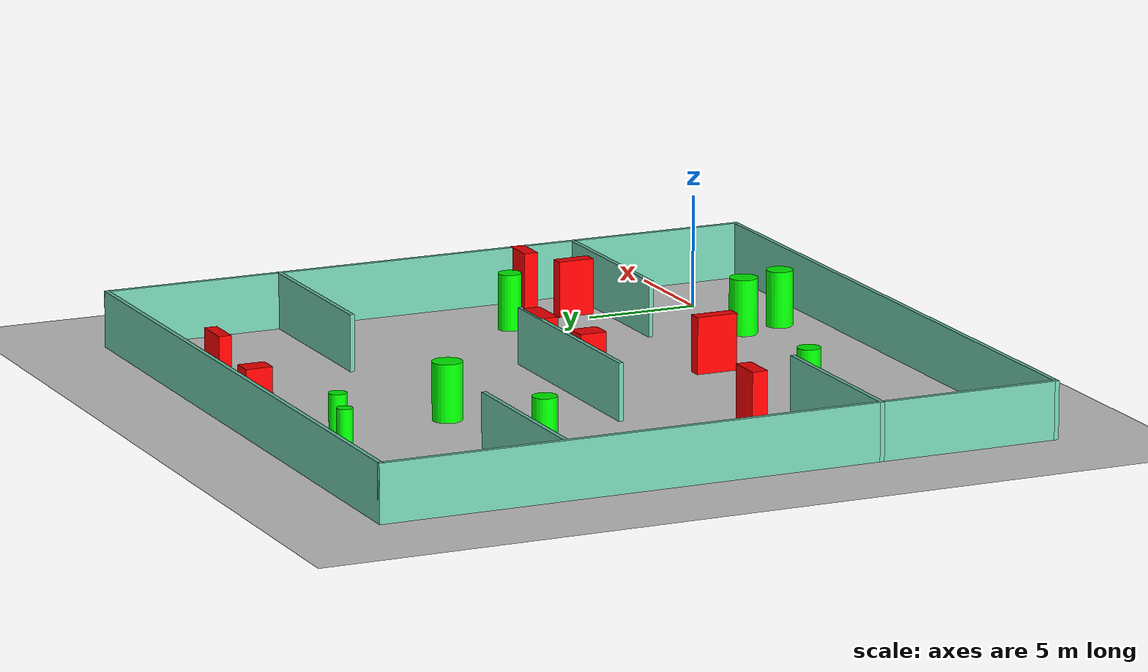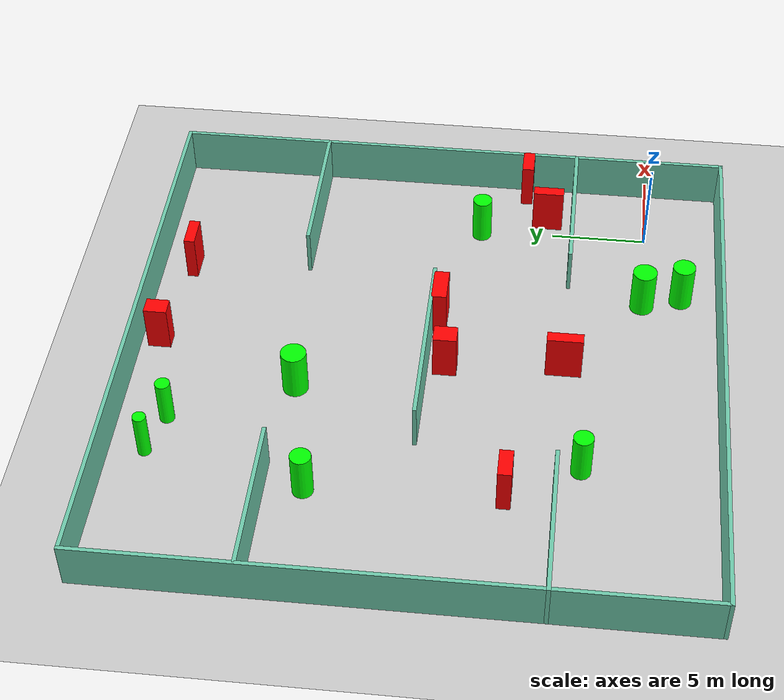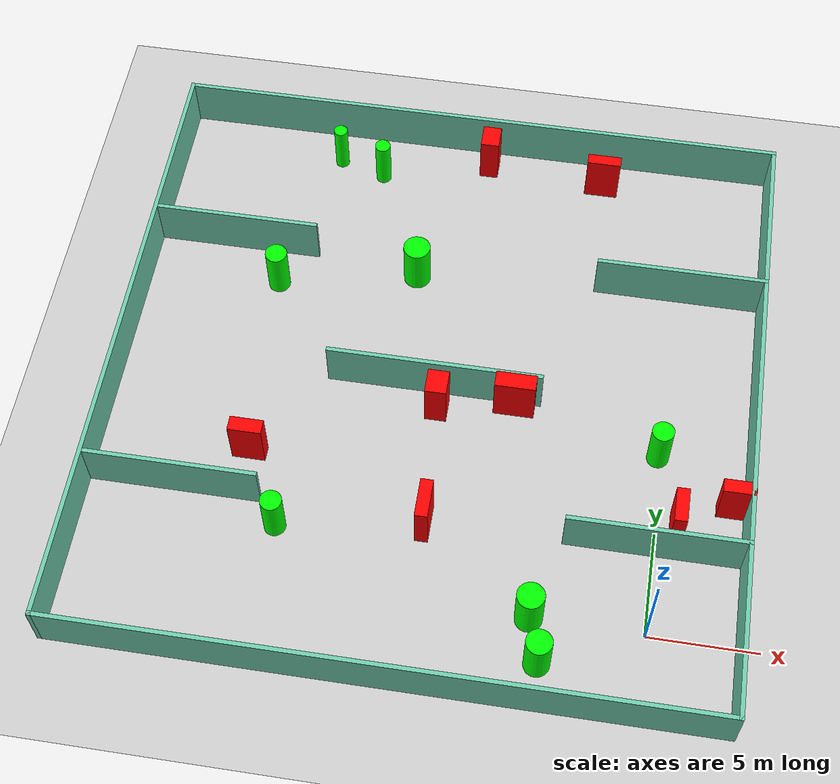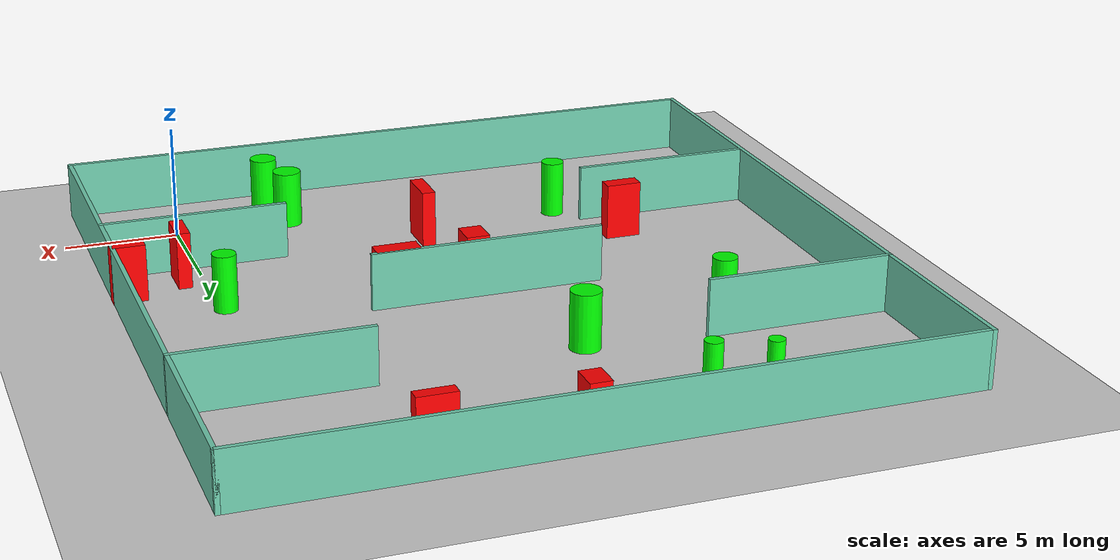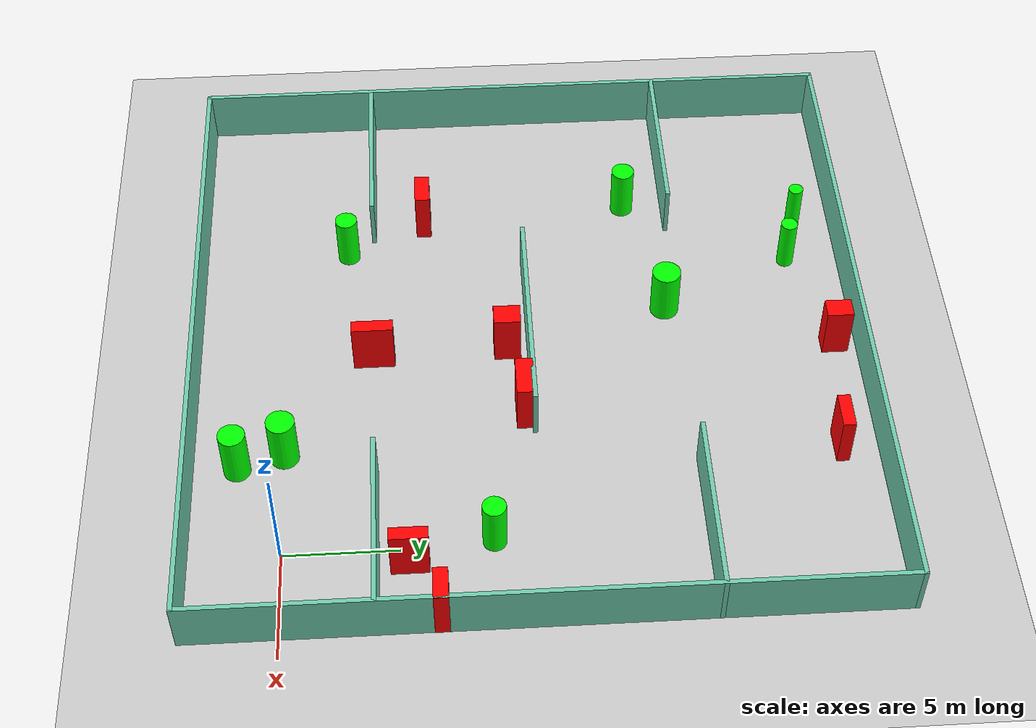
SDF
<sdf version="1.7">
 <world name="default">
  <light name="sun" type="directional">
   <pose>0 0 10 0 -0 0</pose>
   <diffuse>0.8 0.8 0.8 1</diffuse>
   <specular>0.2 0.2 0.2 1</specular>
   <attenuation>
    <range>1000</range>
    <constant>0.9</constant>
    <linear>0.01</linear>
    <quadratic>0.001</quadratic>
   </attenuation>
   <direction>-0.5 0.1 -0.9</direction>
   <spot><inner_angle>0</inner_angle><outer_angle>0</outer_angle><falloff>0</falloff></spot>
  </light>
  <model name="ground_plane">
   <static>1</static>
   <link name="link">
    <collision name="collision">
     <geometry><plane><normal>0 0 1</normal><size>100 100</size></plane></geometry>
     <surface>
      <contact><collide_bitmask>65535</collide_bitmask></contact>
      <friction><ode><mu>100</mu><mu2>50</mu2></ode></friction>
     </surface>
    </collision>
    <visual name="visual">
     <cast_shadows>0</cast_shadows>
     <geometry><plane><normal>0 0 1</normal><size>100 100</size></plane></geometry>
     <material>
      <script><uri>file://media/materials/scripts/gazebo.material</uri><name>Gazebo/Grey</name></script>
     </material>
    </visual>
   </link>
  </model>
  <gravity>0 0 -9.8</gravity>
  <magnetic_field>6e-06 2.3e-05 -4.2e-05</magnetic_field>
  <atmosphere type="adiabatic"/>
  <physics type="ode">
   <max_step_size>0.001</max_step_size>
   <real_time_factor>1</real_time_factor>
   <real_time_update_rate>1000</real_time_update_rate>
  </physics>
  <scene><ambient>0.4 0.4 0.4 1</ambient><background>0.7 0.7 0.7 1</background><shadows>1</shadows></scene>
  <spherical_coordinates>
   <surface_model>EARTH_WGS84</surface_model>
   <latitude_deg>0</latitude_deg>
   <longitude_deg>0</longitude_deg>
   <elevation>0</elevation>
   <heading_deg>0</heading_deg>
  </spherical_coordinates>
  <model name="my_base_walls">
   <link name="Wall_10">
    <collision name="Wall_10_Collision">
     <geometry><box><size>8.2 0.2 2.5</size></box></geometry>
     <pose>0 0 1.25 0 -0 0</pose>
    </collision>
    <visual name="Wall_10_Visual">
     <pose>0 0 1.25 0 -0 0</pose>
     <geometry><box><size>8.2 0.2 2.5</size></box></geometry>
     <material>
      <script><uri>file://media/materials/scripts/gazebo.material</uri><name>Gazebo/Grey</name></script>
      <ambient>0.435294 0.796078 0.67451 1</ambient>
     </material>
     <meta><layer>0</layer></meta>
    </visual>
    <pose>-11 -7 0 0 -0 0</pose>
   </link>
   <link name="Wall_12">
    <collision name="Wall_12_Collision">
     <geometry><box><size>8.2 0.2 2.5</size></box></geometry>
     <pose>0 0 1.25 0 -0 0</pose>
    </collision>
    <visual name="Wall_12_Visual">
     <pose>0 0 1.25 0 -0 0</pose>
     <geometry><box><size>8.2 0.2 2.5</size></box></geometry>
     <material>
      <script><uri>file://media/materials/scripts/gazebo.material</uri><name>Gazebo/Grey</name></script>
      <ambient>0.435294 0.796078 0.67451 1</ambient>
     </material>
     <meta><layer>0</layer></meta>
    </visual>
    <pose>-11 7 0 0 -0 0</pose>
   </link>
   <link name="Wall_14">
    <collision name="Wall_14_Collision">
     <geometry><box><size>8.2 0.2 2.5</size></box></geometry>
     <pose>0 0 1.25 0 -0 0</pose>
    </collision>
    <visual name="Wall_14_Visual">
     <pose>0 0 1.25 0 -0 0</pose>
     <geometry><box><size>8.2 0.2 2.5</size></box></geometry>
     <material>
      <script><uri>file://media/materials/scripts/gazebo.material</uri><name>Gazebo/Grey</name></script>
      <ambient>0.435294 0.796078 0.67451 1</ambient>
     </material>
     <meta><layer>0</layer></meta>
    </visual>
    <pose>11 7 0 0 -0 3.14159</pose>
   </link>
   <link name="Wall_16">
    <collision name="Wall_16_Collision">
     <geometry><box><size>10.2 0.2 2.5</size></box></geometry>
     <pose>0 0 1.25 0 -0 0</pose>
    </collision>
    <visual name="Wall_16_Visual">
     <pose>0 0 1.25 0 -0 0</pose>
     <geometry><box><size>10.2 0.2 2.5</size></box></geometry>
     <material>
      <script><uri>file://media/materials/scripts/gazebo.material</uri><name>Gazebo/Grey</name></script>
      <ambient>0.435294 0.796078 0.67451 1</ambient>
     </material>
     <meta><layer>0</layer></meta>
    </visual>
    <pose>0 0 0 0 -0 3.14159</pose>
   </link>
   <link name="Wall_2">
    <collision name="Wall_2_Collision">
     <geometry><box><size>30.2 0.2 2.5</size></box></geometry>
     <pose>0 0 1.25 0 -0 0</pose>
    </collision>
    <visual name="Wall_2_Visual">
     <pose>0 0 1.25 0 -0 0</pose>
     <geometry><box><size>30.2 0.2 2.5</size></box></geometry>
     <material>
      <script><uri>file://media/materials/scripts/gazebo.material</uri><name>Gazebo/Grey</name></script>
      <ambient>0.435294 0.796078 0.67451 1</ambient>
     </material>
     <meta><layer>0</layer></meta>
    </visual>
    <pose>0 -15 0 0 -0 3.14159</pose>
   </link>
   <link name="Wall_3">
    <collision name="Wall_3_Collision">
     <geometry><box><size>30.2 0.2 2.5</size></box></geometry>
     <pose>0 0 1.25 0 -0 0</pose>
    </collision>
    <visual name="Wall_3_Visual">
     <pose>0 0 1.25 0 -0 0</pose>
     <geometry><box><size>30.2 0.2 2.5</size></box></geometry>
     <material>
      <script><uri>file://media/materials/scripts/gazebo.material</uri><name>Gazebo/Grey</name></script>
      <ambient>0.435294 0.796078 0.67451 1</ambient>
     </material>
     <meta><layer>0</layer></meta>
    </visual>
    <pose>-15 0 0 0 -0 1.5708</pose>
   </link>
   <link name="Wall_4">
    <collision name="Wall_4_Collision">
     <geometry><box><size>30.2 0.2 2.5</size></box></geometry>
     <pose>0 0 1.25 0 -0 0</pose>
    </collision>
    <visual name="Wall_4_Visual">
     <pose>0 0 1.25 0 -0 0</pose>
     <geometry><box><size>30.2 0.2 2.5</size></box></geometry>
     <material>
      <script><uri>file://media/materials/scripts/gazebo.material</uri><name>Gazebo/Grey</name></script>
      <ambient>0.435294 0.796078 0.67451 1</ambient>
     </material>
     <meta><layer>0</layer></meta>
    </visual>
    <pose>0 15 0 0 -0 0</pose>
   </link>
   <link name="Wall_6">
    <collision name="Wall_6_Collision">
     <geometry><box><size>30.2 0.2 2.5</size></box></geometry>
     <pose>0 0 1.25 0 -0 0</pose>
    </collision>
    <visual name="Wall_6_Visual">
     <pose>0 0 1.25 0 -0 0</pose>
     <geometry><box><size>30.2 0.2 2.5</size></box></geometry>
     <material>
      <script><uri>file://media/materials/scripts/gazebo.material</uri><name>Gazebo/Grey</name></script>
      <ambient>0.435294 0.796078 0.67451 1</ambient>
     </material>
     <meta><layer>0</layer></meta>
    </visual>
    <pose>15 0 0 0 -0 1.5708</pose>
   </link>
   <link name="Wall_8">
    <collision name="Wall_8_Collision">
     <geometry><box><size>8.2 0.2 2.5</size></box></geometry>
     <pose>0 0 1.25 0 -0 0</pose>
    </collision>
    <visual name="Wall_8_Visual">
     <pose>0 0 1.25 0 -0 0</pose>
     <geometry><box><size>8.2 0.2 2.5</size></box></geometry>
     <material>
      <script><uri>file://media/materials/scripts/gazebo.material</uri><name>Gazebo/Grey</name></script>
      <ambient>0.435294 0.796078 0.67451 1</ambient>
     </material>
     <meta><layer>0</layer></meta>
    </visual>
    <pose>11 -7 0 0 -0 3.14159</pose>
   </link>
   <static>1</static>
   <pose>-11 11 0 0 -0 0</pose>
  </model>
  <model name="cylinder1">
   <static>1</static>
   <link name="link">
    <inertial>
     <mass>1</mass>
     <inertia><ixx>0.5</ixx><ixy>0</ixy><ixz>0</ixz><iyy>0.5</iyy><iyz>0</iyz><izz>1</izz></inertia>
    </inertial>
    <collision name="collision">
     <geometry><cylinder><radius>0.3363366994854252</radius><length>2.5</length></cylinder></geometry>
    </collision>
    <visual name="visual">
     <geometry><cylinder><radius>0.3363366994854252</radius><length>2.5</length></cylinder></geometry>
     <material>
      <ambient>0 1 0 1</ambient>
      <diffuse>0 1 0 1</diffuse>
      <specular>0.1 0.1 0.1 1</specular>
      <emissive>0 0 0 0</emissive>
     </material>
    </visual>
   </link>
   <pose>-17.85652575533108 24.10764473980653 1.25 0 0 0</pose>
  </model>
  <model name="cylinder2">
   <static>1</static>
   <link name="link">
    <inertial>
     <mass>1</mass>
     <inertia><ixx>0.5</ixx><ixy>0</ixy><ixz>0</ixz><iyy>0.5</iyy><iyz>0</iyz><izz>1</izz></inertia>
    </inertial>
    <collision name="collision">
     <geometry><cylinder><radius>0.6269574994652876</radius><length>2.5</length></cylinder></geometry>
    </collision>
    <visual name="visual">
     <geometry><cylinder><radius>0.6269574994652876</radius><length>2.5</length></cylinder></geometry>
     <material>
      <ambient>0 1 0 1</ambient>
      <diffuse>0 1 0 1</diffuse>
      <specular>0.1 0.1 0.1 1</specular>
      <emissive>0 0 0 0</emissive>
     </material>
    </visual>
   </link>
   <pose>-5.138537167641198 0.05303315606818826 1.25 0 0 0</pose>
  </model>
  <model name="cylinder3">
   <static>1</static>
   <link name="link">
    <inertial>
     <mass>1</mass>
     <inertia><ixx>0.5</ixx><ixy>0</ixy><ixz>0</ixz><iyy>0.5</iyy><iyz>0</iyz><izz>1</izz></inertia>
    </inertial>
    <collision name="collision">
     <geometry><cylinder><radius>0.5020650706072494</radius><length>2.5</length></cylinder></geometry>
    </collision>
    <visual name="visual">
     <geometry><cylinder><radius>0.5020650706072494</radius><length>2.5</length></cylinder></geometry>
     <material>
      <ambient>0 1 0 1</ambient>
      <diffuse>0 1 0 1</diffuse>
      <specular>0.1 0.1 0.1 1</specular>
      <emissive>0 0 0 0</emissive>
     </material>
    </visual>
   </link>
   <pose>-17.011723000417962 2.8026841922108234 1.25 0 0 0</pose>
  </model>
  <model name="cylinder4">
   <static>1</static>
   <link name="link">
    <inertial>
     <mass>1</mass>
     <inertia><ixx>0.5</ixx><ixy>0</ixy><ixz>0</ixz><iyy>0.5</iyy><iyz>0</iyz><izz>1</izz></inertia>
    </inertial>
    <collision name="collision">
     <geometry><cylinder><radius>0.6523163558487611</radius><length>2.5</length></cylinder></geometry>
    </collision>
    <visual name="visual">
     <geometry><cylinder><radius>0.6523163558487611</radius><length>2.5</length></cylinder></geometry>
     <material>
      <ambient>0 1 0 1</ambient>
      <diffuse>0 1 0 1</diffuse>
      <specular>0.1 0.1 0.1 1</specular>
      <emissive>0 0 0 0</emissive>
     </material>
    </visual>
   </link>
   <pose>-12.845867111541263 17.41122809105308 1.25 0 0 0</pose>
  </model>
  <model name="cylinder5">
   <static>1</static>
   <link name="link">
    <inertial>
     <mass>1</mass>
     <inertia><ixx>0.5</ixx><ixy>0</ixy><ixz>0</ixz><iyy>0.5</iyy><iyz>0</iyz><izz>1</izz></inertia>
    </inertial>
    <collision name="collision">
     <geometry><cylinder><radius>0.38114913634290687</radius><length>2.5</length></cylinder></geometry>
    </collision>
    <visual name="visual">
     <geometry><cylinder><radius>0.38114913634290687</radius><length>2.5</length></cylinder></geometry>
     <material>
      <ambient>0 1 0 1</ambient>
      <diffuse>0 1 0 1</diffuse>
      <specular>0.1 0.1 0.1 1</specular>
      <emissive>0 0 0 0</emissive>
     </material>
    </visual>
   </link>
   <pose>-15.572819361686362 23.45749693092033 1.25 0 0 0</pose>
  </model>
  <model name="cylinder6">
   <static>1</static>
   <link name="link">
    <inertial>
     <mass>1</mass>
     <inertia><ixx>0.5</ixx><ixy>0</ixy><ixz>0</ixz><iyy>0.5</iyy><iyz>0</iyz><izz>1</izz></inertia>
    </inertial>
    <collision name="collision">
     <geometry><cylinder><radius>0.5124720970394383</radius><length>2.5</length></cylinder></geometry>
    </collision>
    <visual name="visual">
     <geometry><cylinder><radius>0.5124720970394383</radius><length>2.5</length></cylinder></geometry>
     <material>
      <ambient>0 1 0 1</ambient>
      <diffuse>0 1 0 1</diffuse>
      <specular>0.1 0.1 0.1 1</specular>
      <emissive>0 0 0 0</emissive>
     </material>
    </visual>
   </link>
   <pose>-0.2104889221838384 8.951861938248273 1.25 0 0 0</pose>
  </model>
  <model name="cylinder7">
   <static>1</static>
   <link name="link">
    <inertial>
     <mass>1</mass>
     <inertia><ixx>0.5</ixx><ixy>0</ixy><ixz>0</ixz><iyy>0.5</iyy><iyz>0</iyz><izz>1</izz></inertia>
    </inertial>
    <collision name="collision">
     <geometry><cylinder><radius>0.5910968963164418</radius><length>2.5</length></cylinder></geometry>
    </collision>
    <visual name="visual">
     <geometry><cylinder><radius>0.5910968963164418</radius><length>2.5</length></cylinder></geometry>
     <material>
      <ambient>0 1 0 1</ambient>
      <diffuse>0 1 0 1</diffuse>
      <specular>0.1 0.1 0.1 1</specular>
      <emissive>0 0 0 0</emissive>
     </material>
    </visual>
   </link>
   <pose>-4.539236146861727 -1.9864452446526868 1.25 0 0 0</pose>
  </model>
  <model name="cylinder8">
   <static>1</static>
   <link name="link">
    <inertial>
     <mass>1</mass>
     <inertia><ixx>0.5</ixx><ixy>0</ixy><ixz>0</ixz><iyy>0.5</iyy><iyz>0</iyz><izz>1</izz></inertia>
    </inertial>
    <collision name="collision">
     <geometry><cylinder><radius>0.5284128878188638</radius><length>2.5</length></cylinder></geometry>
    </collision>
    <visual name="visual">
     <geometry><cylinder><radius>0.5284128878188638</radius><length>2.5</length></cylinder></geometry>
     <material>
      <ambient>0 1 0 1</ambient>
      <diffuse>0 1 0 1</diffuse>
      <specular>0.1 0.1 0.1 1</specular>
      <emissive>0 0 0 0</emissive>
     </material>
    </visual>
   </link>
   <pose>-19.5321470420419 16.0145827263061 1.25 0 0 0</pose>
  </model>
  <model name="box1">
   <static>1</static>
   <link name="link">
    <inertial>
     <mass>1</mass>
     <inertia><ixx>0.083</ixx><ixy>0</ixy><ixz>0</ixz><iyy>0.083</iyy><iyz>0</iyz><izz>0.083</izz></inertia>
    </inertial>
    <collision name="collision">
     <geometry><box><size>1.6525855942027345 0.5621093141673161 2.5</size></box></geometry>
    </collision>
    <visual name="visual">
     <geometry><box><size>1.6525855942027345 0.5621093141673161 2.5</size></box></geometry>
     <material>
      <ambient>1 0 0 1</ambient>
      <diffuse>1 0 0 1</diffuse>
      <specular>0.1 0.1 0.1 1</specular>
      <emissive>0 0 0 0</emissive>
     </material>
    </visual>
    <sensor name="my_contact" type="contact">
     <contact><collision>box_collision</collision><topic>__default_topic__</topic></contact>
    </sensor>
   </link>
   <pose>-4.381617479679258 24.23322872847167 1.25 0 0 0</pose>
  </model>
  <model name="box2">
   <static>1</static>
   <link name="link">
    <inertial>
     <mass>1</mass>
     <inertia><ixx>0.083</ixx><ixy>0</ixy><ixz>0</ixz><iyy>0.083</iyy><iyz>0</iyz><izz>0.083</izz></inertia>
    </inertial>
    <collision name="collision">
     <geometry><box><size>0.591219975284736 1.633940791337665 2.5</size></box></geometry>
    </collision>
    <visual name="visual">
     <geometry><box><size>0.591219975284736 1.633940791337665 2.5</size></box></geometry>
     <material>
      <ambient>1 0 0 1</ambient>
      <diffuse>1 0 0 1</diffuse>
      <specular>0.1 0.1 0.1 1</specular>
      <emissive>0 0 0 0</emissive>
     </material>
    </visual>
    <sensor name="my_contact" type="contact">
     <contact><collision>box_collision</collision><topic>__default_topic__</topic></contact>
    </sensor>
   </link>
   <pose>0.9044953166279228 5.391853032883297 1.25 0 0 0</pose>
  </model>
  <model name="box3">
   <static>1</static>
   <link name="link">
    <inertial>
     <mass>1</mass>
     <inertia><ixx>0.083</ixx><ixy>0</ixy><ixz>0</ixz><iyy>0.083</iyy><iyz>0</iyz><izz>0.083</izz></inertia>
    </inertial>
    <collision name="collision">
     <geometry><box><size>1.0068866354865567 1.2078917692649545 2.5</size></box></geometry>
    </collision>
    <visual name="visual">
     <geometry><box><size>1.0068866354865567 1.2078917692649545 2.5</size></box></geometry>
     <material>
      <ambient>1 0 0 1</ambient>
      <diffuse>1 0 0 1</diffuse>
      <specular>0.1 0.1 0.1 1</specular>
      <emissive>0 0 0 0</emissive>
     </material>
    </visual>
    <sensor name="my_contact" type="contact">
     <contact><collision>box_collision</collision><topic>__default_topic__</topic></contact>
    </sensor>
   </link>
   <pose>-10.715339577571793 10.006132042193894 1.25 0 0 0</pose>
  </model>
  <model name="box4">
   <static>1</static>
   <link name="link">
    <inertial>
     <mass>1</mass>
     <inertia><ixx>0.083</ixx><ixy>0</ixy><ixz>0</ixz><iyy>0.083</iyy><iyz>0</iyz><izz>0.083</izz></inertia>
    </inertial>
    <collision name="collision">
     <geometry><box><size>1.5584634939447182 0.6935197763805421 2.5</size></box></geometry>
    </collision>
    <visual name="visual">
     <geometry><box><size>1.5584634939447182 0.6935197763805421 2.5</size></box></geometry>
     <material>
      <ambient>1 0 0 1</ambient>
      <diffuse>1 0 0 1</diffuse>
      <specular>0.1 0.1 0.1 1</specular>
      <emissive>0 0 0 0</emissive>
     </material>
    </visual>
    <sensor name="my_contact" type="contact">
     <contact><collision>box_collision</collision><topic>__default_topic__</topic></contact>
    </sensor>
   </link>
   <pose>-18.933624227751405 6.386137939925286 1.25 0 0 0</pose>
  </model>
  <model name="box5">
   <static>1</static>
   <link name="link">
    <inertial>
     <mass>1</mass>
     <inertia><ixx>0.083</ixx><ixy>0</ixy><ixz>0</ixz><iyy>0.083</iyy><iyz>0</iyz><izz>0.083</izz></inertia>
    </inertial>
    <collision name="collision">
     <geometry><box><size>0.9134787309728991 1.183768381306685 2.5</size></box></geometry>
    </collision>
    <visual name="visual">
     <geometry><box><size>0.9134787309728991 1.183768381306685 2.5</size></box></geometry>
     <material>
      <ambient>1 0 0 1</ambient>
      <diffuse>1 0 0 1</diffuse>
      <specular>0.1 0.1 0.1 1</specular>
      <emissive>0 0 0 0</emissive>
     </material>
    </visual>
    <sensor name="my_contact" type="contact">
     <contact><collision>box_collision</collision><topic>__default_topic__</topic></contact>
    </sensor>
   </link>
   <pose>-10.224076366556751 24.90381311678903 1.25 0 0 0</pose>
  </model>
  <model name="box6">
   <static>1</static>
   <link name="link">
    <inertial>
     <mass>1</mass>
     <inertia><ixx>0.083</ixx><ixy>0</ixy><ixz>0</ixz><iyy>0.083</iyy><iyz>0</iyz><izz>0.083</izz></inertia>
    </inertial>
    <collision name="collision">
     <geometry><box><size>1.4741940793341164 0.6327989251874405 2.5</size></box></geometry>
    </collision>
    <visual name="visual">
     <geometry><box><size>1.4741940793341164 0.6327989251874405 2.5</size></box></geometry>
     <material>
      <ambient>1 0 0 1</ambient>
      <diffuse>1 0 0 1</diffuse>
      <specular>0.1 0.1 0.1 1</specular>
      <emissive>0 0 0 0</emissive>
     </material>
    </visual>
    <sensor name="my_contact" type="contact">
     <contact><collision>box_collision</collision><topic>__default_topic__</topic></contact>
    </sensor>
   </link>
   <pose>3.3755620781625204 6.645943294662933 1.25 0 0 0</pose>
  </model>
  <model name="box7">
   <static>1</static>
   <link name="link">
    <inertial>
     <mass>1</mass>
     <inertia><ixx>0.083</ixx><ixy>0</ixy><ixz>0</ixz><iyy>0.083</iyy><iyz>0</iyz><izz>0.083</izz></inertia>
    </inertial>
    <collision name="collision">
     <geometry><box><size>1.9160601157260253 0.7838369982367892 2.5</size></box></geometry>
    </collision>
    <visual name="visual">
     <geometry><box><size>1.9160601157260253 0.7838369982367892 2.5</size></box></geometry>
     <material>
      <ambient>1 0 0 1</ambient>
      <diffuse>1 0 0 1</diffuse>
      <specular>0.1 0.1 0.1 1</specular>
      <emissive>0 0 0 0</emissive>
     </material>
    </visual>
    <sensor name="my_contact" type="contact">
     <contact><collision>box_collision</collision><topic>__default_topic__</topic></contact>
    </sensor>
   </link>
   <pose>-7.1272389805461245 10.601152082105532 1.25 0 0 0</pose>
  </model>
  <model name="box8">
   <static>1</static>
   <link name="link">
    <inertial>
     <mass>1</mass>
     <inertia><ixx>0.083</ixx><ixy>0</ixy><ixz>0</ixz><iyy>0.083</iyy><iyz>0</iyz><izz>0.083</izz></inertia>
    </inertial>
    <collision name="collision">
     <geometry><box><size>0.595293148309478 1.8560323281887086 2.5</size></box></geometry>
    </collision>
    <visual name="visual">
     <geometry><box><size>0.595293148309478 1.8560323281887086 2.5</size></box></geometry>
     <material>
      <ambient>1 0 0 1</ambient>
      <diffuse>1 0 0 1</diffuse>
      <specular>0.1 0.1 0.1 1</specular>
      <emissive>0 0 0 0</emissive>
     </material>
    </visual>
    <sensor name="my_contact" type="contact">
     <contact><collision>box_collision</collision><topic>__default_topic__</topic></contact>
    </sensor>
   </link>
   <pose>-10.36634288411335 3.973740131598678 1.25 0 0 0</pose>
  </model>
 </world>
</sdf>
